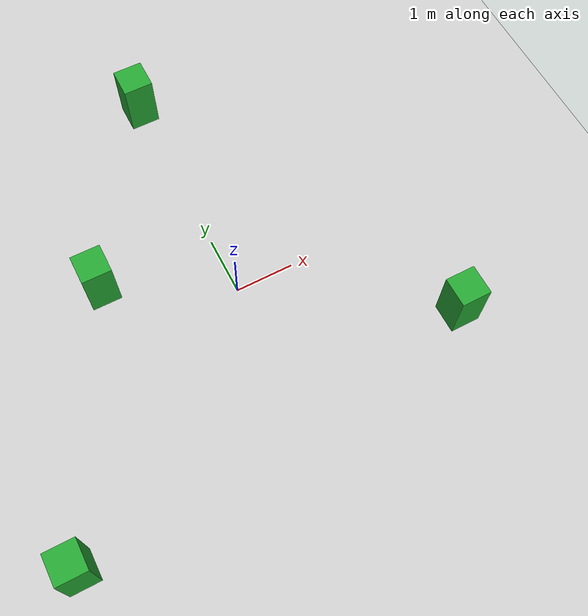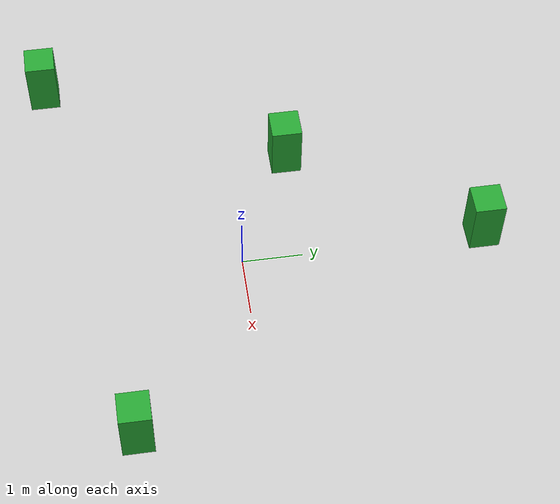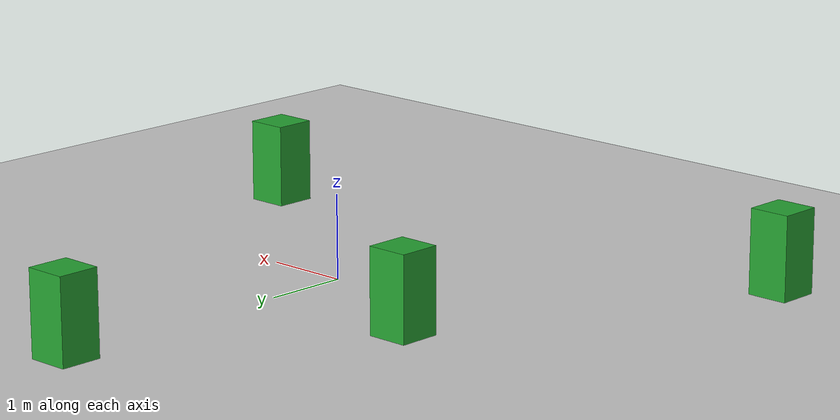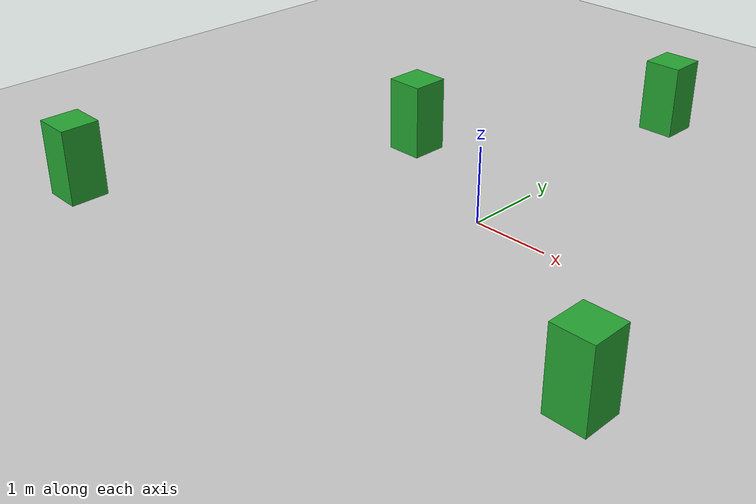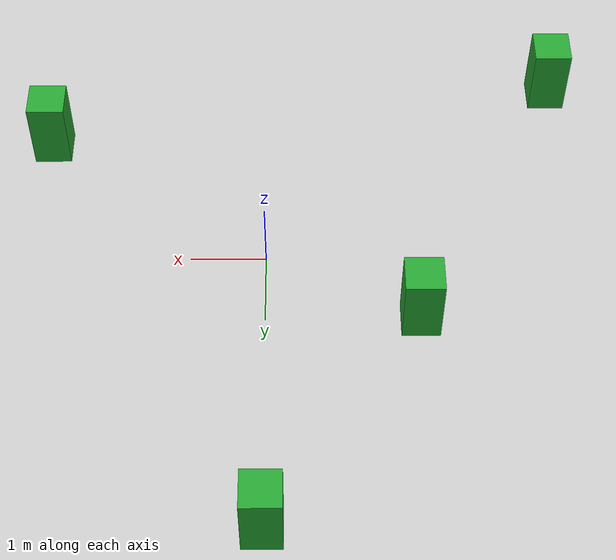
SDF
<?xml version="1.0" ?>
<sdf version="1.7">
  <world name="obstacle_course">
    <!-- Ground Plane -->
    <include>
      <uri>model://ground_plane</uri>
    </include>
    <!-- Lighting -->
    <include>
      <uri>model://sun</uri>
    </include>
    <!-- Obstacle: Box 1 -->
    <model name="box_obstacle_1">
      <pose>-2 1 0.5 0 0 0</pose>
      <link name="box_link">
        <collision name="collision">
          <geometry>
            <box><size>0.5 0.5 1</size></box>
          </geometry>
        </collision>
        <visual name="visual">
          <geometry>
            <box><size>0.5 0.5 1</size></box>
          </geometry>
          <material><script><name>Gazebo/Green</name></script></material>
        </visual>
      </link>
    </model>
    <!-- Obstacle: Box 2 -->
    <model name="box_obstacle_2">
      <pose>3 -2 0.5 0 0 0</pose>
      <link name="box_link">
        <collision name="collision">
          <geometry>
            <box><size>0.5 0.5 1</size></box>
          </geometry>
        </collision>
        <visual name="visual">
          <geometry>
            <box><size>0.5 0.5 1</size></box>
          </geometry>
          <material><script><name>Gazebo/Green</name></script></material>
        </visual>
      </link>
    </model>
    <!-- Obstacle: Box 3 -->
    <model name="box_obstacle_3">
      <pose>0 4 0.5 0 0 0</pose>
      <link name="box_link">
        <collision name="collision">
          <geometry>
            <box><size>0.5 0.5 1</size></box>
          </geometry>
        </collision>
        <visual name="visual">
          <geometry>
            <box><size>0.5 0.5 1</size></box>
          </geometry>
          <material><script><name>Gazebo/Green</name></script></material>
        </visual>
      </link>
    </model>
    <!-- Obstacle: Box 4 -->
    <model name="box_obstacle_4">
      <pose>-4 -3 0.5 0 0 0</pose>
      <link name="box_link">
        <collision name="collision">
          <geometry>
            <box><size>0.5 0.5 1</size></box>
          </geometry>
        </collision>
        <visual name="visual">
          <geometry>
            <box><size>0.5 0.5 1</size></box>
          </geometry>
          <material><script><name>Gazebo/Green</name></script></material>
        </visual>
      </link>
    </model>
  </world>
</sdf>
